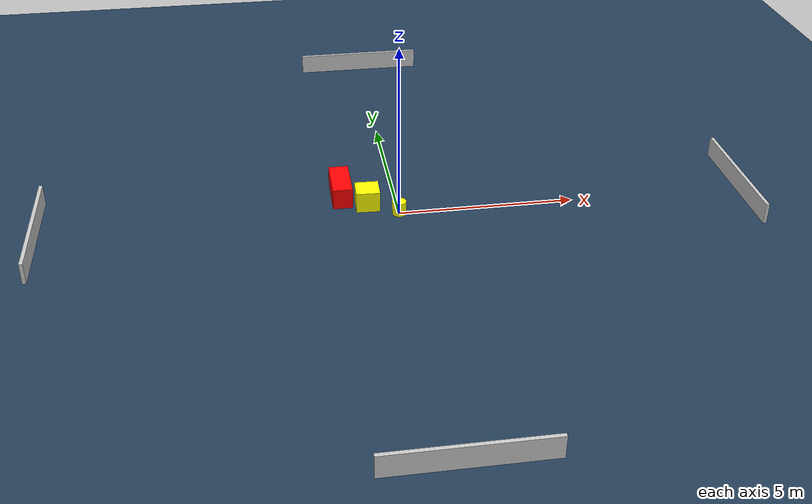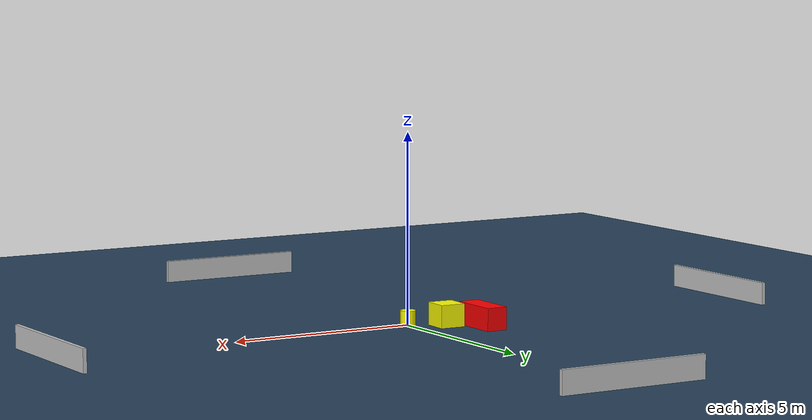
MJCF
<?xml version="1.0" ?>
<mujoco model="generated_environment">
  <option timestep="0.01" integrator="RK4" cone="elliptic"/>
  <default>
    <geom density="1"/>
  </default>
  <asset>
    <texture builtin="gradient" height="3072" name="skybox" rgb1="0.3 0.5 0.7" rgb2="0 0 0" type="skybox" width="512"/>
    <texture builtin="checker" height="300" name="groundplane" rgb1="0.2 0.3 0.4" rgb2="0.1 0.2 0.3" type="2d" width="300"/>
    <material name="groundplane" reflectance="0.2" texrepeat="5 5" texture="groundplane"/>
  </asset>
  <worldbody>
    <light dir="0 0 -1" directional="true" pos="0 0 1.5"/>
    <geom condim="3" friction="0.5 0.005 0.001" material="groundplane" name="floor" pos="0 0 0" size="0 0 0.05" type="plane"/>
    <body name="walls">
      <geom name="wall_1" condim="4" pos="-10.0 0.0 0.3" rgba="0.800000011920929 0.800000011920929 0.800000011920929 1.0" size="0.05 2.0 0.3" type="box"/>
      <geom name="wall_2" condim="4" pos="10.0 0.0 0.3" rgba="0.800000011920929 0.800000011920929 0.800000011920929 1.0" size="0.05 2.0 0.3" type="box"/>
      <geom name="wall_3" condim="4" pos="0.0 -10.0 0.3" rgba="0.800000011920929 0.800000011920929 0.800000011920929 1.0" size="2.0 0.05 0.3" type="box"/>
      <geom name="wall_4" condim="4" pos="0.0 10.0 0.3" rgba="0.800000011920929 0.800000011920929 0.800000011920929 1.0" size="2.0 0.05 0.3" type="box"/>
    </body>
    <body name="robot">
      <joint name="joint_x" type="slide" pos="0 0 0" axis="1 0 0"/>
      <joint name="joint_y" type="slide" pos="0 0 0" axis="0 1 0"/>
      <geom name="robot" type="cylinder" pos="0.0 0.0 0.2" size="0.2 0.2 0.0" mass="5.0" friction="1.0 0.005 0.0001" condim="4" rgba="1.0 1.0 0.0 1.0"/>
    </body>
    <body name="obstacle_1_movable">
      <geom name="obstacle_1_movable" condim="4" pos="-0.8405352321463416 0.5327302962630375 0.3" euler="0 0 358.1751123821769" friction="0.0 0.005 0.001" rgba="1.0 1.0 0.0 1.0" size="0.3386499657467571 0.341272815898752 0.3" type="box" mass="0.1"/>
      <joint type="free"/>
    </body>
    <body name="obstacle_2_static">
      <geom name="obstacle_2_static" condim="4" pos="-1.5369597956473466 1.1789822687947364 0.3" euler="0 0 269.79292961038453" friction="0.0 0.005 0.001" rgba="1.0 0.0 0.0 1.0" size="0.6914058375651042 0.2851967843437892 0.3" type="box"/>
    </body>
  </worldbody>
  <actuator>
    <motor name="actuator_x" joint="joint_x" gear="1" ctrlrange="-1 1"/>
    <motor name="actuator_y" joint="joint_y" gear="1" ctrlrange="-1 1"/>
  </actuator>
</mujoco>
